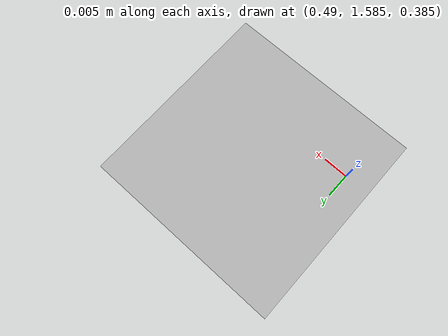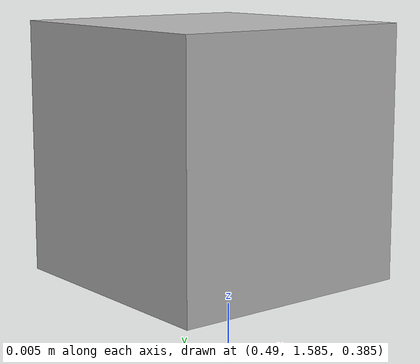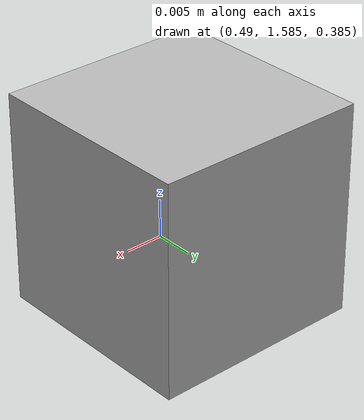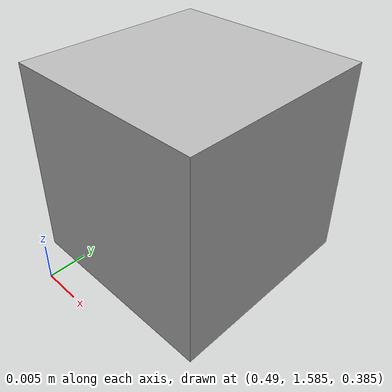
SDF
<?xml version='1.0'?>
<sdf version="1.4">
  <model name="box_model">
    <pose>0.5 1.6 0.4 0.0 0.0 0.0</pose>
    <static>false</static>
    <link name="mine_link_gowno">
      <inertial>
        <mass>0.001</mass>
        <inertia>
          <ixx>0.00000010417</ixx>
          <ixy>0</ixy>
          <ixz>0</ixz>
          <iyy>0.00000010417</iyy>
          <iyz>0</iyz>
          <izz>0.00000010417</izz>
        </inertia>
      </inertial>
      <collision name="collision">
        <geometry>
          <box>
            <size>0.025 0.025 0.025</size>
          </box>
        </geometry>
      </collision>
      <visual name="visual">
        <geometry>
          <box>
            <size>0.025 0.025 0.025</size>
          </box>
        </geometry>
      </visual>
    </link>
  </model>
</sdf>
